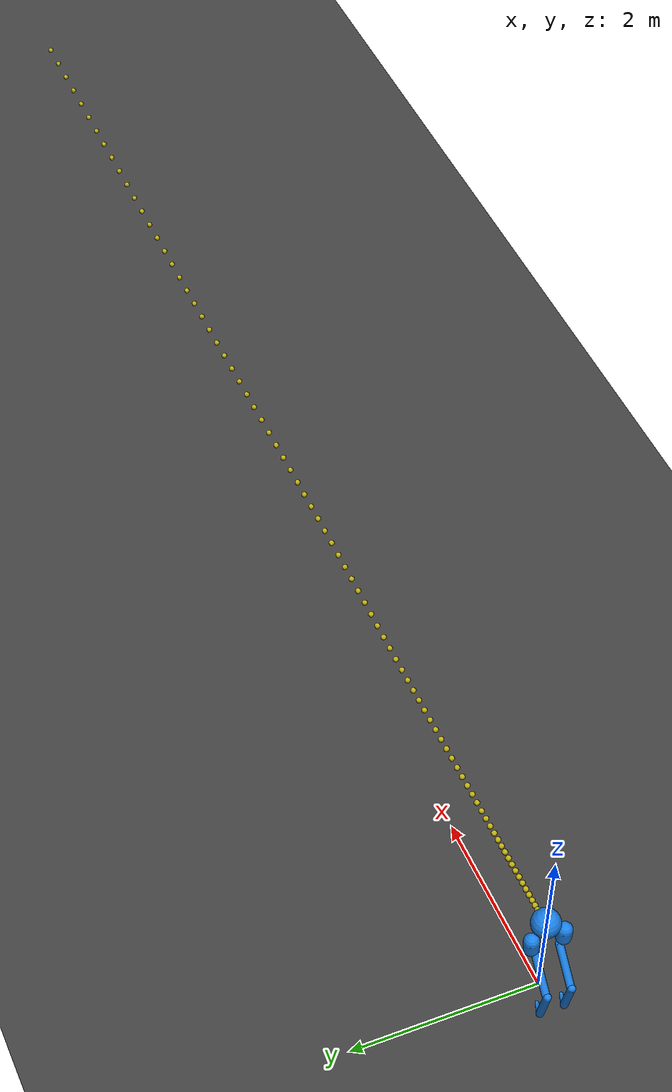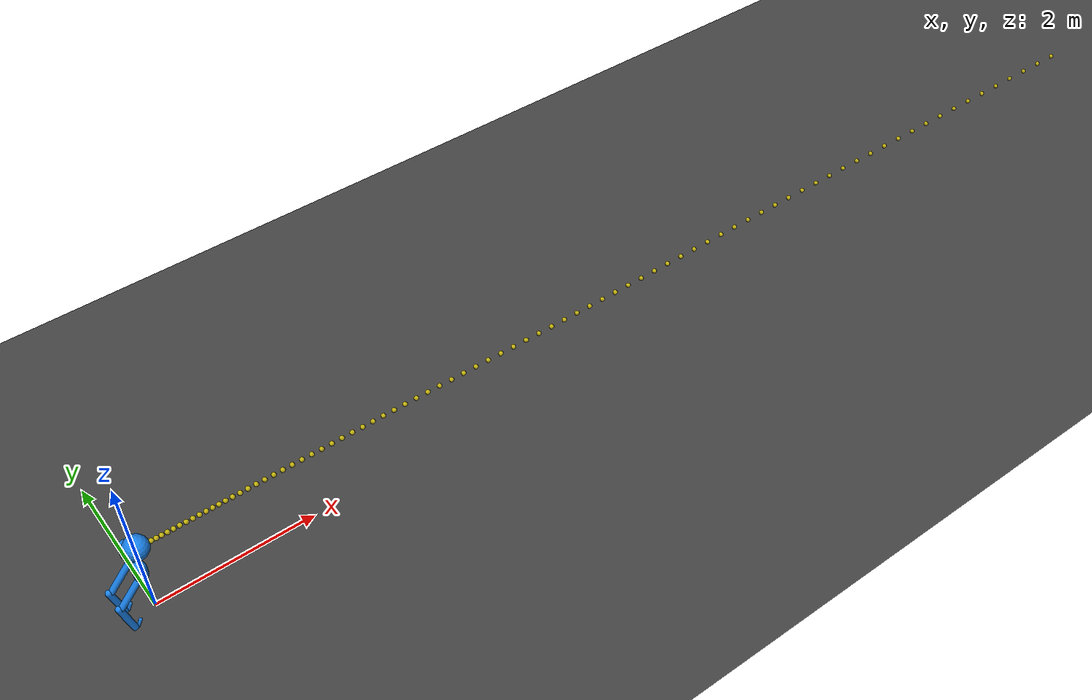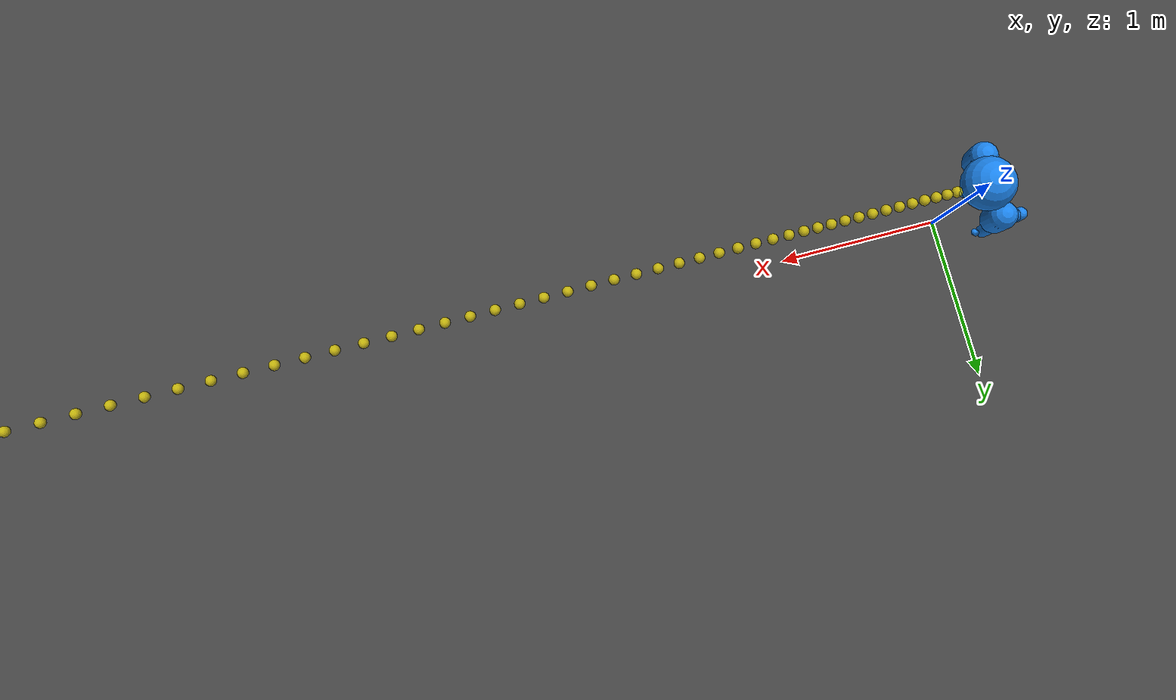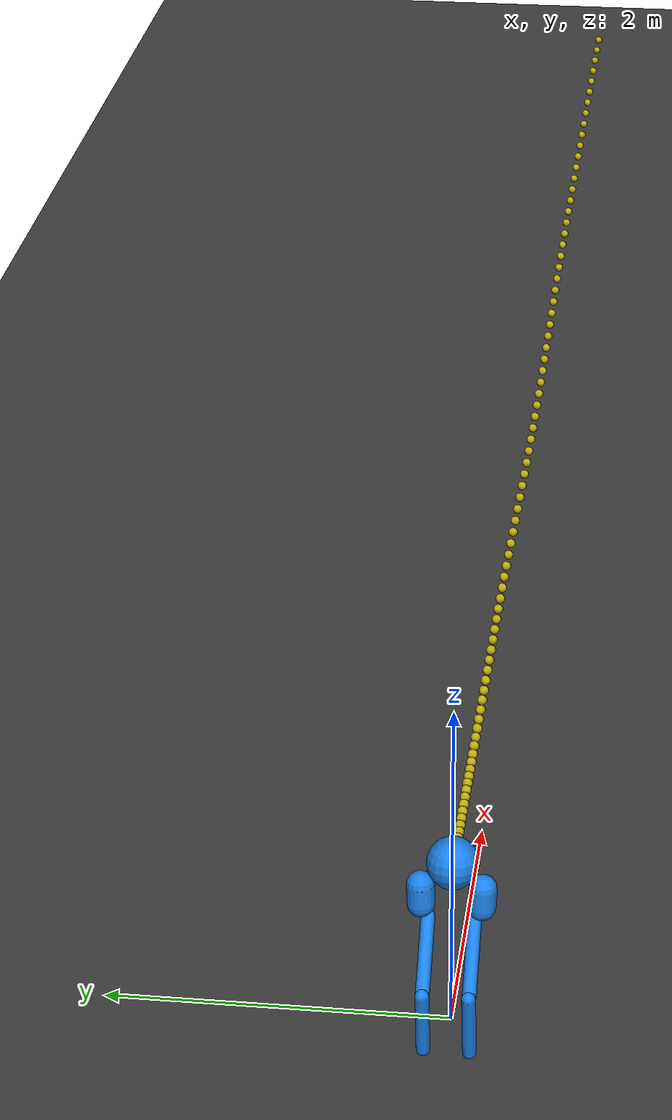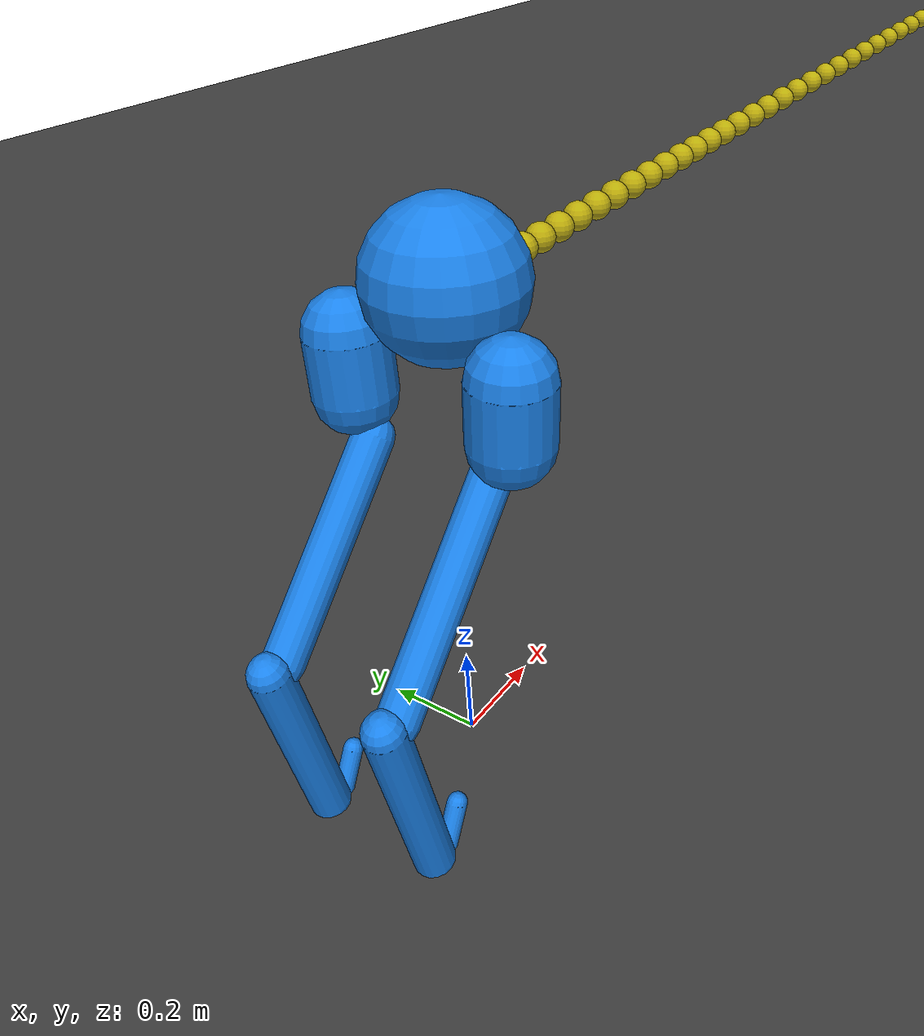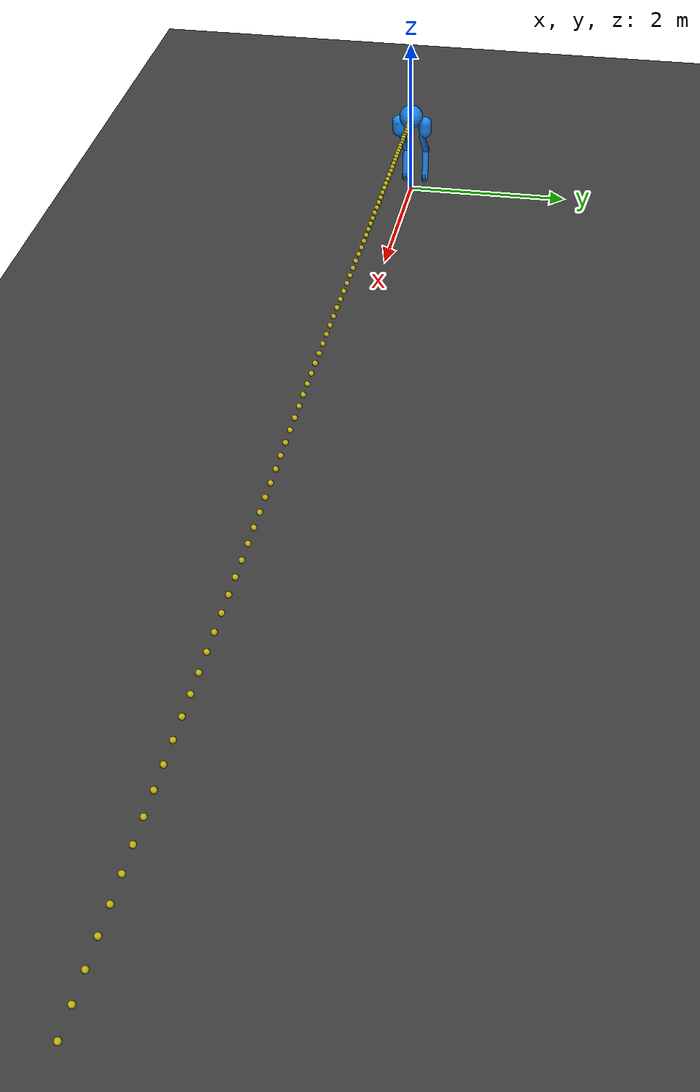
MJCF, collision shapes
<?xml version='1.0' encoding='UTF-8'?>
<!-- Cassie simulation model developed by the Dynamic Robotics Laboratory -->
<mujoco model="cassie">
  <compiler inertiafromgeom="auto" angle="degree" eulerseq="zyx" meshdir="cassie-stl-meshes"/>
  <size nuser_actuator="1" nuser_sensor="1" nuser_geom="1"/>
  <option timestep="0.0005" iterations="50" solver="PGS" gravity="0 0 -9.81"/>
  <!-- Timestep is set to 0.0005 because our controller runs at 2 kHz -->
  <!-- Larger values still have stable dynamics -->
  <visual>
    <quality shadowsize="4096"/>
    <map znear="0.05"/>
  </visual>
  <default>
    <joint limited="true"/>
    <motor ctrllimited="true"/>
    <geom contype="0" conaffinity="0" condim="1" solref="0.005 1"/>
    <equality solref="0.005 1"/>
    <default class="cassie">
      <geom material="cassie"/>
    </default>
    <default class="collision">
      <!-- User parameter for geoms is used to identify collision types -->
      <geom material="collision" contype="1" user="2"/>
      <default class="collision-left">
        <geom contype="2" conaffinity="4"/>
      </default>
      <default class="collision-right">
        <geom contype="4" conaffinity="2"/>
      </default>
    </default>
    <default class="obstacle">
      <geom material="obstacle" condim="3" contype="8" conaffinity="15" user="1"/>
    </default>
  </default>
  <asset>
    <texture type="skybox" builtin="gradient" width="128" height="128" rgb1="0.4 0.6 0.8" rgb2="0 0 0"/>
    <texture name="plane" type="2d" builtin="checker" rgb1="0.2 0.2 0.2" rgb2="0.3 0.3 0.3" width="512" height="512"/>
    <material name="plane" reflectance="0.0" texture="plane" texrepeat="1 1" texuniform="true"/>
    <material name="cassie" rgba="0.9 0.5 0.1 1"/>
    <material name="collision" rgba="0.1 0.5 0.9 0"/>
    <material name="obstacle" rgba="0.2 0.6 0.2 1"/>
    <mesh name="cassie-pelvis" file="pelvis.stl"/>
    <mesh name="left-hip-roll" file="hip-roll.stl"/>
    <mesh name="left-hip-yaw" file="hip-yaw.stl"/>
    <mesh name="left-hip-pitch" file="hip-pitch.stl"/>
    <mesh name="left-achilles-rod" file="achilles-rod.stl"/>
    <mesh name="left-knee" file="knee.stl"/>
    <mesh name="left-knee-spring" file="knee-spring.stl"/>
    <mesh name="left-shin" file="shin.stl"/>
    <mesh name="left-tarsus" file="tarsus.stl"/>
    <mesh name="left-heel-spring" file="heel-spring.stl"/>
    <mesh name="left-foot-crank" file="foot-crank.stl"/>
    <mesh name="left-plantar-rod" file="plantar-rod.stl"/>
    <mesh name="left-foot" file="foot.stl"/>
    <mesh name="right-hip-roll" scale="1 -1 1" file="hip-roll.stl"/>
    <mesh name="right-hip-yaw" scale="1 -1 1" file="hip-yaw.stl"/>
    <mesh name="right-hip-pitch" scale="1 1 -1" file="hip-pitch.stl"/>
    <mesh name="right-achilles-rod" scale="1 1 -1" file="achilles-rod.stl"/>
    <mesh name="right-knee" scale="1 1 -1" file="knee.stl"/>
    <mesh name="right-knee-spring" scale="1 1 -1" file="knee-spring.stl"/>
    <mesh name="right-shin" scale="1 1 -1" file="shin.stl"/>
    <mesh name="right-tarsus" scale="1 1 -1" file="tarsus.stl"/>
    <mesh name="right-heel-spring" scale="1 1 -1" file="heel-spring.stl"/>
    <mesh name="right-foot-crank" scale="1 1 -1" file="foot-crank.stl"/>
    <mesh name="right-plantar-rod" scale="1 1 -1" file="plantar-rod.stl"/>
    <mesh name="right-foot" scale="1 1 -1" file="foot.stl"/>
  </asset>
  <worldbody>
    <geom name="floor" pos="0 0 -0.01" size="100 5 .125" type="plane" material="plane" condim="3" conaffinity="15" priority="1"/>
    <light mode="trackcom" pos="0 0 5" dir="0 0 -1"/>
    <light directional="true" pos="0 0 3" dir="0 0 -1" diffuse="0.2 0.2 0.2" specular="0 0 0"/>
    <body name="cassie-pelvis" pos="0 0 1.01" childclass="cassie">
      <camera name="track" pos="0 -3 1" zaxis="0 -1 0.5" mode="track"/>
      <!--camera name='track' pos='-3 0 0' xyaxes='0 -1 0 0 0 1' mode='track'/-->
      <inertial pos="0.05066 0.000346 0.02841" mass="10.33" fullinertia="0.085821 0.049222 0.08626 1.276e-05 -0.00016022 -0.000414"/>
      <joint type="slide" axis="1 0 0" limited="false"/>
      <joint type="slide" axis="0 1 0" limited="false"/>
      <joint type="slide" axis="0 0 1" limited="false" ref="1.01"/>
      <joint type="ball" limited="false"/>
      <geom type="mesh" mesh="cassie-pelvis"/>
      <geom type="sphere" size="0.15" pos="0.02 0 0.02" class="collision"/>
      <site name="imu" size="0.01" pos="0.03155 0 -0.07996"/>
      <body name="left-hip-roll" pos="0.021 0.135 0" xyaxes="0 0 -1 0 1 0">
        <inertial pos="-0.01793 0.0001 -0.04428" mass="1.82" fullinertia="0.003431 0.003793 0.002135 -6.65e-07 -0.00084 3.99e-06"/>
        <joint name="left-hip-roll" type="hinge" range="-15 22.5" damping="1" armature="0.038125"/>
        <geom type="mesh" mesh="left-hip-roll"/>
        <body name="left-hip-yaw" pos="0 0 -0.07" xyaxes="0 0 1 0 1 0">
          <inertial pos="0 -1e-05 -0.034277" mass="1.171" fullinertia="0.002443 0.002803 0.000842 -4e-08 2.462e-07 -2.71e-08"/>
          <joint name="left-hip-yaw" type="hinge" range="-22.5 22.5" damping="1" armature="0.038125"/>
          <geom type="mesh" mesh="left-hip-yaw"/>
          <body name="left-hip-pitch" pos="0 0 -0.09" xyaxes="0 0 -1 1 0 0">
            <inertial pos="0.05946 5e-05 -0.03581" mass="5.52" fullinertia="0.010898 0.029714 0.030257 -0.0002669 -5.721e-05 9.17e-06"/>
            <joint name="left-hip-pitch" type="hinge" range="-50 80" damping="1" armature="0.09344"/>
            <geom type="mesh" mesh="left-hip-pitch"/>
            <geom type="capsule" size="0.08" fromto="0 0 -0.04 0.12 0 -0.0355" class="collision"/>
            <body name="left-achilles-rod" pos="0 0 0.045" xyaxes="0.7922 -0.60599 -0.072096 0.60349 0.79547 -0.054922">
              <inertial pos="0.24719 0 0" mass="0.1567" fullinertia="3.754e-06 0.004487 0.004488 -3.74e-08 -1.61e-08 0"/>
              <joint name="left-achilles-rod" type="ball" limited="false" damping="0.01"/>
              <geom type="mesh" mesh="left-achilles-rod"/>
            </body>
            <body name="left-knee" pos="0.12 0 0.0045" xyaxes="0.70711 -0.70711 0 0.70711 0.70711 0">
              <inertial pos="0.023 0.03207 -0.002181" mass="0.7578" fullinertia="0.001376 0.0010335 0.0021637 -0.00039744 -4.085e-05 -5.374e-05"/>
              <joint name="left-knee" type="hinge" ref="-45" range="-164 -37" damping="1" armature="0.09344"/>
              <geom type="mesh" mesh="left-knee"/>
              <body name="left-knee-spring" pos="0.06068 0.08241 0">
                <inertial pos="0.0836 0.0034 0" mass="0.186" fullinertia="5.215e-05 0.00041205 0.0003669 6.87e-06 0 0"/>
                <geom type="mesh" mesh="left-knee-spring"/>
              </body>
              <body name="left-shin" pos="0.06068 0.04741 0">
                <inertial pos="0.18338 0.001169 0.0002123" mass="0.577" fullinertia="0.00035939 0.014728 0.014707 -0.00020981 2.266e-05 -1.2e-07"/>
                <joint name="left-shin" type="hinge" range="-20 20" stiffness="1500" damping="0.1"/>
                <geom type="mesh" mesh="left-shin"/>
                <geom type="capsule" size="0.04" fromto="0 0 0 0.43476 0.02 0" class="collision-left"/>
                <body name="left-tarsus" pos="0.43476 0.02 0" xyaxes="0.52992 0.84805 0 -0.84805 0.52992 0">
                  <inertial pos="0.11046 -0.03058 -0.00131" mass="0.782" fullinertia="0.00039238 0.013595 0.013674 0.00023651 -4.987e-05 -4.82e-06"/>
                  <joint name="left-tarsus" type="hinge" ref="58" range="50 170" damping="0.1"/>
                  <geom type="mesh" mesh="left-tarsus"/>
                  <geom type="capsule" size="0.04" fromto="-0.01269 -0.03059 0.00092 0.408 -0.04 0" class="collision-left"/>
                  <body name="left-heel-spring" pos="-0.01269 -0.03059 0.00092" xyaxes="-0.91211 0.40829 0.036948 -0.40992 -0.90952 -0.068841">
                    <inertial pos="0.081 0.0022 0" mass="0.126" fullinertia="2.959e-05 0.00022231 0.0002007 7.15e-06 -6e-07 1e-07"/>
                    <joint name="left-heel-spring" type="hinge" limited="false" stiffness="1250"/>
                    <geom type="mesh" mesh="left-heel-spring"/>
                  </body>
                  <body name="left-foot-crank" pos="0.058 -0.034 0.02275">
                    <inertial pos="0.00493 2e-05 -0.00215" mass="0.1261" fullinertia="2.6941e-05 4.9621e-05 6.3362e-05 -2.1e-09 -3.9623e-06 -1.09e-08"/>
                    <joint name="left-foot-crank" type="hinge" range="-140 -30" damping="1"/>
                    <geom type="mesh" mesh="left-foot-crank"/>
                    <body name="left-plantar-rod" pos="0.055 0 -0.00791">
                      <inertial pos="0.17792 0 0" mass="0.1186" fullinertia="2.779e-06 0.001774 0.001775 -2.34e-08 -8.1e-09 0"/>
                      <joint name="left-plantar-rod" type="hinge" limited="false"/>
                      <geom type="mesh" mesh="left-plantar-rod"/>
                    </body>
                  </body>
                  <body name="left-foot" pos="0.408 -0.04 0">
                    <inertial pos="0.00474 0.02748 -0.00014" mass="0.1498" fullinertia="0.00017388 0.00016793 0.00033261 0.00011814 1.36e-06 -4e-07"/>
                    <joint name="left-foot" type="hinge" range="-140 -30" damping="1" armature="0.01225"/>
                    <geom type="mesh" mesh="left-foot"/>
                    <geom type="capsule" size="0.02" fromto="-0.052821 0.092622 0 0.069746 -0.010224 0" class="collision-left"/>
                  </body>
                </body>
              </body>
            </body>
          </body>
        </body>
      </body>
      <body name="right-hip-roll" pos="0.021 -0.135 0" xyaxes="0 0 -1 0 1 0">
        <inertial pos="-0.01793 0.0001 -0.04428" mass="1.82" fullinertia="0.003431 0.003793 0.002135 6.65e-07 -0.00084 -3.99e-06"/>
        <joint name="right-hip-roll" type="hinge" range="-22.5 15" damping="1" armature="0.038125"/>
        <geom type="mesh" mesh="right-hip-roll"/>
        <body name="right-hip-yaw" pos="0 0 -0.07" xyaxes="0 0 1 0 1 0">
          <inertial pos="0 1e-05 -0.034277" mass="1.171" fullinertia="0.002443 0.002803 0.000842 4e-08 2.462e-07 2.71e-08"/>
          <joint name="right-hip-yaw" type="hinge" range="-22.5 22.5" damping="1" armature="0.038125"/>
          <geom type="mesh" mesh="right-hip-yaw"/>
          <body name="right-hip-pitch" pos="0 0 -0.09" xyaxes="0 0 -1 1 0 0">
            <inertial pos="0.05946 5e-05 0.03581" mass="5.52" fullinertia="0.010898 0.029714 0.030257 -0.0002669 5.721e-05 -9.17e-06"/>
            <joint name="right-hip-pitch" type="hinge" range="-50 80" damping="1" armature="0.09344"/>
            <geom type="mesh" mesh="right-hip-pitch"/>
            <geom type="capsule" size="0.08" fromto="0 0 0.04 0.12 0 0.0355" class="collision"/>
            <body name="right-achilles-rod" pos="0 0 -0.045" xyaxes="0.7922 -0.60599 0.072096 0.60349 0.79547 0.054922">
              <inertial pos="0.24719 0 0" mass="0.1567" fullinertia="3.754e-06 0.004487 0.004488 -3.74e-08 1.61e-08 0"/>
              <joint name="right-achilles-rod" type="ball" limited="false" damping="0.01"/>
              <geom type="mesh" mesh="right-achilles-rod"/>
            </body>
            <body name="right-knee" pos="0.12 0 -0.0045" xyaxes="0.70711 -0.70711 0 0.70711 0.70711 0">
              <inertial pos="0.023 0.03207 0.002181" mass="0.7578" fullinertia="0.001376 0.0010335 0.0021637 -0.00039744 4.085e-05 5.374e-05"/>
              <joint name="right-knee" type="hinge" ref="-45" range="-164 -37" damping="1" armature="0.09344"/>
              <geom type="mesh" mesh="right-knee"/>
              <body name="right-knee-spring" pos="0.06068 0.08241 0">
                <inertial pos="0.0836 0.0034 0" mass="0.186" fullinertia="5.215e-05 0.00041205 0.0003669 6.87e-06 0 0"/>
                <geom type="mesh" mesh="right-knee-spring"/>
              </body>
              <body name="right-shin" pos="0.06068 0.04741 0">
                <inertial pos="0.18338 0.001169 -0.0002123" mass="0.577" fullinertia="0.00035939 0.014728 0.014707 -0.00020981 -2.266e-05 1.2e-07"/>
                <joint name="right-shin" type="hinge" range="-20 20" stiffness="1500" damping="0.1"/>
                <geom type="mesh" mesh="right-shin"/>
                <geom type="capsule" size="0.04" fromto="0 0 0 0.43476 0.02 0" class="collision-right"/>
                <body name="right-tarsus" pos="0.43476 0.02 0" xyaxes="0.52992 0.84805 0 -0.84805 0.52992 0">
                  <inertial pos="0.11046 -0.03058 0.00131" mass="0.782" fullinertia="0.00039238 0.013595 0.013674 0.00023651 4.987e-05 4.82e-06"/>
                  <joint name="right-tarsus" type="hinge" ref="58" range="50 170" damping="0.1"/>
                  <geom type="mesh" mesh="right-tarsus"/>
                  <geom type="capsule" size="0.04" fromto="-0.01269 -0.03059 -0.00092 0.408 -0.04 0" class="collision-right"/>
                  <body name="right-heel-spring" pos="-0.01269 -0.03059 -0.00092" xyaxes="-0.91211 0.40829 -0.036948 -0.40992 -0.90952 0.068841">
                    <inertial pos="0.081 0.0022 0" mass="0.126" fullinertia="2.959e-05 0.00022231 0.0002007 7.15e-06 6e-07 -1e-07"/>
                    <joint name="right-heel-spring" type="hinge" limited="false" stiffness="1250"/>
                    <geom type="mesh" mesh="right-heel-spring"/>
                  </body>
                  <body name="right-foot-crank" pos="0.058 -0.034 -0.02275">
                    <inertial pos="0.00493 2e-05 0.00215" mass="0.1261" fullinertia="2.6941e-05 4.9621e-05 6.3362e-05 -2.1e-09 3.9623e-06 1.09e-08"/>
                    <joint name="right-foot-crank" type="hinge" range="-140 -30" damping="1"/>
                    <geom type="mesh" mesh="right-foot-crank"/>
                    <body name="right-plantar-rod" pos="0.055 0 0.00791">
                      <inertial pos="0.17792 0 0" mass="0.1186" fullinertia="2.779e-06 0.001774 0.001775 -2.34e-08 8.1e-09 0"/>
                      <joint name="right-plantar-rod" type="hinge" limited="false"/>
                      <geom type="mesh" mesh="right-plantar-rod"/>
                    </body>
                  </body>
                  <body name="right-foot" pos="0.408 -0.04 0">
                    <inertial pos="0.00474 0.02748 0.00014" mass="0.1498" fullinertia="0.00017388 0.00016793 0.00033261 0.00011814 -1.36e-06 4e-07"/>
                    <joint name="right-foot" type="hinge" range="-140 -30" damping="1" armature="0.01225"/>
                    <geom type="mesh" mesh="right-foot"/>
                    <geom type="capsule" size="0.02" fromto="-0.052821 0.092622 0 0.069746 -0.010224 0" class="collision-right"/>
                  </body>
                </body>
              </body>
            </body>
          </body>
        </body>
      </body>
    </body>
    <!-- Add any other moving bodies after the Cassie definition -->
    <geom name="waypoint1" pos="0.0 0.0 1.01 " size="0.1 0.03 0.03" type="sphere" contype="0" rgba="1 0.9 0 0.7" mass="0"/>
    <geom name="waypoint2" pos="0.0 0.0 1.01 " size="0.03 0.03 0.03" type="sphere" contype="0" rgba="1 0.9 0 0.7"/>
    <geom name="waypoint3" pos="0.0 0.0 1.01 " size="0.03 0.03 0.03" type="sphere" contype="0" rgba="1 0.9 0 0.7"/>
    <geom name="waypoint4" pos="0.0 0.0 1.01 " size="0.03 0.03 0.03" type="sphere" contype="0" rgba="1 0.9 0 0.7"/>
    <geom name="waypoint5" pos="0.0 0.0 1.01 " size="0.03 0.03 0.03" type="sphere" contype="0" rgba="1 0.9 0 0.7"/>
    <geom name="waypoint6" pos="0.0 0.0 1.01 " size="0.03 0.03 0.03" type="sphere" contype="0" rgba="1 0.9 0 0.7"/>
    <geom name="waypoint7" pos="0.0 0.0 1.01 " size="0.03 0.03 0.03" type="sphere" contype="0" rgba="1 0.9 0 0.7"/>
    <geom name="waypoint8" pos="0.0 0.0 1.01 " size="0.03 0.03 0.03" type="sphere" contype="0" rgba="1 0.9 0 0.7"/>
    <geom name="waypoint9" pos="0.0 0.0 1.01 " size="0.03 0.03 0.03" type="sphere" contype="0" rgba="1 0.9 0 0.7"/>
    <geom name="waypoint10" pos="0.0 0.0 1.01 " size="0.03 0.03 0.03" type="sphere" contype="0" rgba="1 0.9 0 0.7"/>
    <geom name="waypoint11" pos="0.0 0.0 1.01 " size="0.03 0.03 0.03" type="sphere" contype="0" rgba="1 0.9 0 0.7"/>
    <geom name="waypoint12" pos="0.0 0.0 1.01 " size="0.03 0.03 0.03" type="sphere" contype="0" rgba="1 0.9 0 0.7"/>
    <geom name="waypoint13" pos="0.0 0.0 1.01 " size="0.03 0.03 0.03" type="sphere" contype="0" rgba="1 0.9 0 0.7"/>
    <geom name="waypoint14" pos="0.0 0.0 1.01 " size="0.03 0.03 0.03" type="sphere" contype="0" rgba="1 0.9 0 0.7"/>
    <geom name="waypoint15" pos="0.0 0.0 1.01 " size="0.03 0.03 0.03" type="sphere" contype="0" rgba="1 0.9 0 0.7"/>
    <geom name="waypoint16" pos="0.0 0.0 1.01 " size="0.03 0.03 0.03" type="sphere" contype="0" rgba="1 0.9 0 0.7"/>
    <geom name="waypoint17" pos="0.001402125706671642 0.0 1.01 " size="0.03 0.03 0.03" type="sphere" contype="0" rgba="1 0.9 0 0.7"/>
    <geom name="waypoint18" pos="0.011804766336572903 0.0 1.01 " size="0.03 0.03 0.03" type="sphere" contype="0" rgba="1 0.9 0 0.7"/>
    <geom name="waypoint19" pos="0.031739464320212685 0.0 1.01 " size="0.03 0.03 0.03" type="sphere" contype="0" rgba="1 0.9 0 0.7"/>
    <geom name="waypoint20" pos="0.06048254324099345 0.0 1.01 " size="0.03 0.03 0.03" type="sphere" contype="0" rgba="1 0.9 0 0.7"/>
    <geom name="waypoint21" pos="0.09731032668231832 0.0 1.01 " size="0.03 0.03 0.03" type="sphere" contype="0" rgba="1 0.9 0 0.7"/>
    <geom name="waypoint22" pos="0.14149913822758986 0.0 1.01 " size="0.03 0.03 0.03" type="sphere" contype="0" rgba="1 0.9 0 0.7"/>
    <geom name="waypoint23" pos="0.19232530146021087 0.0 1.01 " size="0.03 0.03 0.03" type="sphere" contype="0" rgba="1 0.9 0 0.7"/>
    <geom name="waypoint24" pos="0.2490651399635841 0.0 1.01 " size="0.03 0.03 0.03" type="sphere" contype="0" rgba="1 0.9 0 0.7"/>
    <geom name="waypoint25" pos="0.3109949773211127 0.0 1.01 " size="0.03 0.03 0.03" type="sphere" contype="0" rgba="1 0.9 0 0.7"/>
    <geom name="waypoint26" pos="0.3773911371161989 0.0 1.01 " size="0.03 0.03 0.03" type="sphere" contype="0" rgba="1 0.9 0 0.7"/>
    <geom name="waypoint27" pos="0.4475299429322461 0.0 1.01 " size="0.03 0.03 0.03" type="sphere" contype="0" rgba="1 0.9 0 0.7"/>
    <geom name="waypoint28" pos="0.5206877183526566 0.0 1.01 " size="0.03 0.03 0.03" type="sphere" contype="0" rgba="1 0.9 0 0.7"/>
    <geom name="waypoint29" pos="0.5961407869608335 0.0 1.01 " size="0.03 0.03 0.03" type="sphere" contype="0" rgba="1 0.9 0 0.7"/>
    <geom name="waypoint30" pos="0.6731654723401793 0.0 1.01 " size="0.03 0.03 0.03" type="sphere" contype="0" rgba="1 0.9 0 0.7"/>
    <geom name="waypoint31" pos="0.7510380980740973 0.0 1.01 " size="0.03 0.03 0.03" type="sphere" contype="0" rgba="1 0.9 0 0.7"/>
    <geom name="waypoint32" pos="0.8290349877459898 0.0 1.01 " size="0.03 0.03 0.03" type="sphere" contype="0" rgba="1 0.9 0 0.7"/>
    <geom name="waypoint33" pos="0.9064324649392596 0.0 1.01 " size="0.03 0.03 0.03" type="sphere" contype="0" rgba="1 0.9 0 0.7"/>
    <geom name="waypoint34" pos="0.9825114791111614 0.0 1.01 " size="0.03 0.03 0.03" type="sphere" contype="0" rgba="1 0.9 0 0.7"/>
    <geom name="waypoint35" pos="1.061053144757774 0.0 1.01 " size="0.03 0.03 0.03" type="sphere" contype="0" rgba="1 0.9 0 0.7"/>
    <geom name="waypoint36" pos="1.1455714252417715 0.0 1.01 " size="0.03 0.03 0.03" type="sphere" contype="0" rgba="1 0.9 0 0.7"/>
    <geom name="waypoint37" pos="1.2357539868310978 0.0 1.01 " size="0.03 0.03 0.03" type="sphere" contype="0" rgba="1 0.9 0 0.7"/>
    <geom name="waypoint38" pos="1.3312884957936977 0.0 1.01 " size="0.03 0.03 0.03" type="sphere" contype="0" rgba="1 0.9 0 0.7"/>
    <geom name="waypoint39" pos="1.4318626183975143 0.0 1.01 " size="0.03 0.03 0.03" type="sphere" contype="0" rgba="1 0.9 0 0.7"/>
    <geom name="waypoint40" pos="1.5371640209104942 0.0 1.01 " size="0.03 0.03 0.03" type="sphere" contype="0" rgba="1 0.9 0 0.7"/>
    <geom name="waypoint41" pos="1.64688036960058 0.0 1.01 " size="0.03 0.03 0.03" type="sphere" contype="0" rgba="1 0.9 0 0.7"/>
    <geom name="waypoint42" pos="1.7606993307357173 0.0 1.01 " size="0.03 0.03 0.03" type="sphere" contype="0" rgba="1 0.9 0 0.7"/>
    <geom name="waypoint43" pos="1.8783085705838527 0.0 1.01 " size="0.03 0.03 0.03" type="sphere" contype="0" rgba="1 0.9 0 0.7"/>
    <geom name="waypoint44" pos="1.9993957554129276 0.0 1.01 " size="0.03 0.03 0.03" type="sphere" contype="0" rgba="1 0.9 0 0.7"/>
    <geom name="waypoint45" pos="2.1236485514908874 0.0 1.01 " size="0.03 0.03 0.03" type="sphere" contype="0" rgba="1 0.9 0 0.7"/>
    <geom name="waypoint46" pos="2.2507546250856767 0.0 1.01 " size="0.03 0.03 0.03" type="sphere" contype="0" rgba="1 0.9 0 0.7"/>
    <geom name="waypoint47" pos="2.380401642465241 0.0 1.01 " size="0.03 0.03 0.03" type="sphere" contype="0" rgba="1 0.9 0 0.7"/>
    <geom name="waypoint48" pos="2.5122772698975253 0.0 1.01 " size="0.03 0.03 0.03" type="sphere" contype="0" rgba="1 0.9 0 0.7"/>
    <geom name="waypoint49" pos="2.646069173650472 0.0 1.01 " size="0.03 0.03 0.03" type="sphere" contype="0" rgba="1 0.9 0 0.7"/>
    <geom name="waypoint50" pos="2.781465019992028 0.0 1.01 " size="0.03 0.03 0.03" type="sphere" contype="0" rgba="1 0.9 0 0.7"/>
    <geom name="waypoint51" pos="2.918152475190135 0.0 1.01 " size="0.03 0.03 0.03" type="sphere" contype="0" rgba="1 0.9 0 0.7"/>
    <geom name="waypoint52" pos="3.056499455033961 -5.813304999691127e-05 1.01 " size="0.03 0.03 0.03" type="sphere" contype="0" rgba="1 0.9 0 0.7"/>
    <geom name="waypoint53" pos="3.1995909165562777 -0.00044371880590077234 1.01 " size="0.03 0.03 0.03" type="sphere" contype="0" rgba="1 0.9 0 0.7"/>
    <geom name="waypoint54" pos="3.347655315214637 -0.0011522789453284332 1.01 " size="0.03 0.03 0.03" type="sphere" contype="0" rgba="1 0.9 0 0.7"/>
    <geom name="waypoint55" pos="3.5004687162867274 -0.002138903936389269 1.01 " size="0.03 0.03 0.03" type="sphere" contype="0" rgba="1 0.9 0 0.7"/>
    <geom name="waypoint56" pos="3.6578071850502374 -0.0033586842471873264 1.01 " size="0.03 0.03 0.03" type="sphere" contype="0" rgba="1 0.9 0 0.7"/>
    <geom name="waypoint57" pos="3.819446786782863 -0.004766710345833758 1.01 " size="0.03 0.03 0.03" type="sphere" contype="0" rgba="1 0.9 0 0.7"/>
    <geom name="waypoint58" pos="3.9851635867622903 -0.006318072700439713 1.01 " size="0.03 0.03 0.03" type="sphere" contype="0" rgba="1 0.9 0 0.7"/>
    <geom name="waypoint59" pos="4.1547336502662136 -0.007967861779107466 1.01 " size="0.03 0.03 0.03" type="sphere" contype="0" rgba="1 0.9 0 0.7"/>
    <geom name="waypoint60" pos="4.327933042572319 -0.009671168049944612 1.01 " size="0.03 0.03 0.03" type="sphere" contype="0" rgba="1 0.9 0 0.7"/>
    <geom name="waypoint61" pos="4.504537828958302 -0.011383081981062304 1.01 " size="0.03 0.03 0.03" type="sphere" contype="0" rgba="1 0.9 0 0.7"/>
    <geom name="waypoint62" pos="4.684324074701848 -0.013058694040566364 1.01 " size="0.03 0.03 0.03" type="sphere" contype="0" rgba="1 0.9 0 0.7"/>
    <geom name="waypoint63" pos="4.867067845080656 -0.01465309469656795 1.01 " size="0.03 0.03 0.03" type="sphere" contype="0" rgba="1 0.9 0 0.7"/>
    <geom name="waypoint64" pos="5.0525452053724065 -0.016121374417171097 1.01 " size="0.03 0.03 0.03" type="sphere" contype="0" rgba="1 0.9 0 0.7"/>
    <geom name="waypoint65" pos="5.240532220854796 -0.017418623670485186 1.01 " size="0.03 0.03 0.03" type="sphere" contype="0" rgba="1 0.9 0 0.7"/>
    <geom name="waypoint66" pos="5.430804956805518 -0.01849993292461427 1.01 " size="0.03 0.03 0.03" type="sphere" contype="0" rgba="1 0.9 0 0.7"/>
    <geom name="waypoint67" pos="5.623139478502253 -0.0193203926476766 1.01 " size="0.03 0.03 0.03" type="sphere" contype="0" rgba="1 0.9 0 0.7"/>
    <geom name="waypoint68" pos="5.8173118512227004 -0.019835093307769117 1.01 " size="0.03 0.03 0.03" type="sphere" contype="0" rgba="1 0.9 0 0.7"/>
    <geom name="waypoint69" pos="6.013104097146328 -0.019999129808516255 1.01 " size="0.03 0.03 0.03" type="sphere" contype="0" rgba="1 0.9 0 0.7"/>
    <geom name="waypoint70" pos="6.211825211885194 -0.019785747157676777 1.01 " size="0.03 0.03 0.03" type="sphere" contype="0" rgba="1 0.9 0 0.7"/>
    <geom name="waypoint71" pos="6.414535269124362 -0.01922768384956797 1.01 " size="0.03 0.03 0.03" type="sphere" contype="0" rgba="1 0.9 0 0.7"/>
    <geom name="waypoint72" pos="6.621146569097501 -0.01836984941607866 1.01 " size="0.03 0.03 0.03" type="sphere" contype="0" rgba="1 0.9 0 0.7"/>
    <geom name="waypoint73" pos="6.8315714120382856 -0.017257153389101276 1.01 " size="0.03 0.03 0.03" type="sphere" contype="0" rgba="1 0.9 0 0.7"/>
    <geom name="waypoint74" pos="7.045722098180381 -0.0159345053005282 1.01 " size="0.03 0.03 0.03" type="sphere" contype="0" rgba="1 0.9 0 0.7"/>
    <geom name="waypoint75" pos="7.263510927757459 -0.01444681468225184 1.01 " size="0.03 0.03 0.03" type="sphere" contype="0" rgba="1 0.9 0 0.7"/>
    <geom name="waypoint76" pos="7.484850201003191 -0.012838991066164596 1.01 " size="0.03 0.03 0.03" type="sphere" contype="0" rgba="1 0.9 0 0.7"/>
    <geom name="waypoint77" pos="7.709652218151239 -0.011155943984158867 1.01 " size="0.03 0.03 0.03" type="sphere" contype="0" rgba="1 0.9 0 0.7"/>
    <geom name="waypoint78" pos="7.937829279435278 -0.009442582968121727 1.01 " size="0.03 0.03 0.03" type="sphere" contype="0" rgba="1 0.9 0 0.7"/>
    <geom name="waypoint79" pos="8.169293685088977 -0.007743817549954458 1.01 " size="0.03 0.03 0.03" type="sphere" contype="0" rgba="1 0.9 0 0.7"/>
    <geom name="waypoint80" pos="8.403957735346006 -0.006104557261542354 1.01 " size="0.03 0.03 0.03" type="sphere" contype="0" rgba="1 0.9 0 0.7"/>
    <geom name="waypoint81" pos="8.641733730440032 -0.0045697116347760405 1.01 " size="0.03 0.03 0.03" type="sphere" contype="0" rgba="1 0.9 0 0.7"/>
    <geom name="waypoint82" pos="8.882533970604726 -0.003184190201556803 1.01 " size="0.03 0.03 0.03" type="sphere" contype="0" rgba="1 0.9 0 0.7"/>
    <geom name="waypoint83" pos="9.126270756073756 -0.00199290249376638 1.01 " size="0.03 0.03 0.03" type="sphere" contype="0" rgba="1 0.9 0 0.7"/>
    <geom name="waypoint84" pos="9.372856387080793 -0.0010407580433042798 1.01 " size="0.03 0.03 0.03" type="sphere" contype="0" rgba="1 0.9 0 0.7"/>
    <geom name="waypoint85" pos="9.622203163859508 -0.0003726663820593501 1.01 " size="0.03 0.03 0.03" type="sphere" contype="0" rgba="1 0.9 0 0.7"/>
    <geom name="waypoint86" pos="9.874223386643568 -3.3537041923992206e-05 1.01 " size="0.03 0.03 0.03" type="sphere" contype="0" rgba="1 0.9 0 0.7"/>
    <geom name="waypoint87" pos="10.129124909411903 0.0 1.01 " size="0.03 0.03 0.03" type="sphere" contype="0" rgba="1 0.9 0 0.7"/>
    <geom name="waypoint88" pos="10.388118243437857 0.0 1.01 " size="0.03 0.03 0.03" type="sphere" contype="0" rgba="1 0.9 0 0.7"/>
    <geom name="waypoint89" pos="10.651283738808496 0.0 1.01 " size="0.03 0.03 0.03" type="sphere" contype="0" rgba="1 0.9 0 0.7"/>
    <geom name="waypoint90" pos="10.918551467100823 0.0 1.01 " size="0.03 0.03 0.03" type="sphere" contype="0" rgba="1 0.9 0 0.7"/>
    <geom name="waypoint91" pos="11.189851499891848 0.0 1.01 " size="0.03 0.03 0.03" type="sphere" contype="0" rgba="1 0.9 0 0.7"/>
    <geom name="waypoint92" pos="11.465113908758568 0.0 1.01 " size="0.03 0.03 0.03" type="sphere" contype="0" rgba="1 0.9 0 0.7"/>
    <geom name="waypoint93" pos="11.744268765277994 0.0 1.01 " size="0.03 0.03 0.03" type="sphere" contype="0" rgba="1 0.9 0 0.7"/>
    <geom name="waypoint94" pos="12.027246141027119 0.0 1.01 " size="0.03 0.03 0.03" type="sphere" contype="0" rgba="1 0.9 0 0.7"/>
    <geom name="waypoint95" pos="12.313976107582954 0.0 1.01 " size="0.03 0.03 0.03" type="sphere" contype="0" rgba="1 0.9 0 0.7"/>
    <geom name="waypoint96" pos="12.604388736522512 0.0 1.01 " size="0.03 0.03 0.03" type="sphere" contype="0" rgba="1 0.9 0 0.7"/>
    <geom name="waypoint97" pos="12.898414099422775 0.0 1.01 " size="0.03 0.03 0.03" type="sphere" contype="0" rgba="1 0.9 0 0.7"/>
    <geom name="waypoint98" pos="13.195982267860767 0.0 1.01 " size="0.03 0.03 0.03" type="sphere" contype="0" rgba="1 0.9 0 0.7"/>
    <geom name="waypoint99" pos="13.497023313413484 0.0 1.01 " size="0.03 0.03 0.03" type="sphere" contype="0" rgba="1 0.9 0 0.7"/>
    <geom name="waypoint100" pos="13.801467307657928 0.0 1.01 " size="0.03 0.03 0.03" type="sphere" contype="0" rgba="1 0.9 0 0.7"/>
    <geom name="waypoint101" pos="14.109244322171106 0.0 1.01 " size="0.03 0.03 0.03" type="sphere" contype="0" rgba="1 0.9 0 0.7"/>
    <geom name="waypoint102" pos="14.420284428530016 0.0 1.01 " size="0.03 0.03 0.03" type="sphere" contype="0" rgba="1 0.9 0 0.7"/>
    <geom name="waypoint103" pos="14.734517698311674 0.0 1.01 " size="0.03 0.03 0.03" type="sphere" contype="0" rgba="1 0.9 0 0.7"/>
  </worldbody>
  <equality>
    <connect body1="left-plantar-rod" body2="left-foot" anchor="0.35012 0 0"/>
    <connect body1="left-achilles-rod" body2="left-heel-spring" anchor="0.5012 0 0"/>
    <connect body1="right-plantar-rod" body2="right-foot" anchor="0.35012 0 0"/>
    <connect body1="right-achilles-rod" body2="right-heel-spring" anchor="0.5012 0 0"/>
  </equality>
  <actuator>
    <!-- User parameter is the maximum no-load motor RPM -->
    <motor name="left-hip-roll" joint="left-hip-roll" gear="25" ctrllimited="true" ctrlrange="-4.5 4.5" user="2900"/>
    <motor name="left-hip-yaw" joint="left-hip-yaw" gear="25" ctrllimited="true" ctrlrange="-4.5 4.5" user="2900"/>
    <motor name="left-hip-pitch" joint="left-hip-pitch" gear="16" ctrllimited="true" ctrlrange="-12.2 12.2" user="1300"/>
    <motor name="left-knee" joint="left-knee" gear="16" ctrllimited="true" ctrlrange="-12.2 12.2" user="1300"/>
    <motor name="left-foot" joint="left-foot" gear="50" ctrllimited="true" ctrlrange="-0.9 0.9" user="5500"/>
    <motor name="right-hip-roll" joint="right-hip-roll" gear="25" ctrllimited="true" ctrlrange="-4.5 4.5" user="2900"/>
    <motor name="right-hip-yaw" joint="right-hip-yaw" gear="25" ctrllimited="true" ctrlrange="-4.5 4.5" user="2900"/>
    <motor name="right-hip-pitch" joint="right-hip-pitch" gear="16" ctrllimited="true" ctrlrange="-12.2 12.2" user="1300"/>
    <motor name="right-knee" joint="right-knee" gear="16" ctrllimited="true" ctrlrange="-12.2 12.2" user="1300"/>
    <motor name="right-foot" joint="right-foot" gear="50" ctrllimited="true" ctrlrange="-0.9 0.9" user="5500"/>
  </actuator>
  <sensor>
    <!-- User parameter is the number of absolute encoder bits -->
    <actuatorpos name="left-hip-roll-input" actuator="left-hip-roll" user="13"/>
    <actuatorpos name="left-hip-yaw-input" actuator="left-hip-yaw" user="13"/>
    <actuatorpos name="left-hip-pitch-input" actuator="left-hip-pitch" user="13"/>
    <actuatorpos name="left-knee-input" actuator="left-knee" user="13"/>
    <actuatorpos name="left-foot-input" actuator="left-foot" user="18"/>
    <jointpos name="left-shin-output" joint="left-shin" user="18" noise="2e-4"/>
    <jointpos name="left-tarsus-output" joint="left-tarsus" user="18" noise="2e-4"/>
    <jointpos name="left-foot-output" joint="left-foot" user="13"/>
    <actuatorpos name="right-hip-roll-input" actuator="right-hip-roll" user="13"/>
    <actuatorpos name="right-hip-yaw-input" actuator="right-hip-yaw" user="13"/>
    <actuatorpos name="right-hip-pitch-input" actuator="right-hip-pitch" user="13"/>
    <actuatorpos name="right-knee-input" actuator="right-knee" user="13"/>
    <actuatorpos name="right-foot-input" actuator="right-foot" user="18"/>
    <jointpos name="right-shin-output" joint="right-shin" user="18" noise="2e-4"/>
    <jointpos name="right-tarsus-output" joint="right-tarsus" user="18" noise="2e-4"/>
    <jointpos name="right-foot-output" joint="right-foot" user="13"/>
    <framequat name="pelvis-orientation" objtype="site" objname="imu"/>
    <gyro name="pelvis-angular-velocity" site="imu" noise="5e-4" cutoff="34.9"/>
    <accelerometer name="pelvis-linear-acceleration" site="imu" noise="1e-2" cutoff="157"/>
    <magnetometer name="pelvis-magnetometer" site="imu"/>
  </sensor>
</mujoco>
